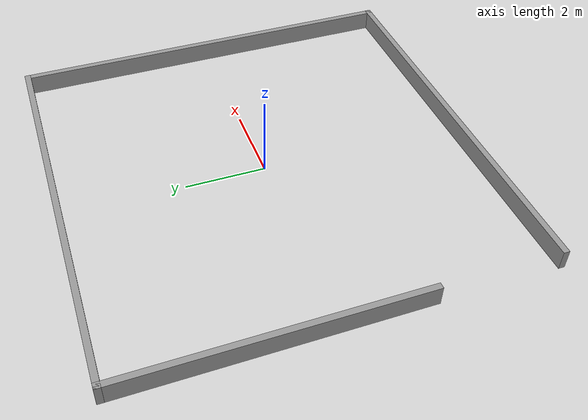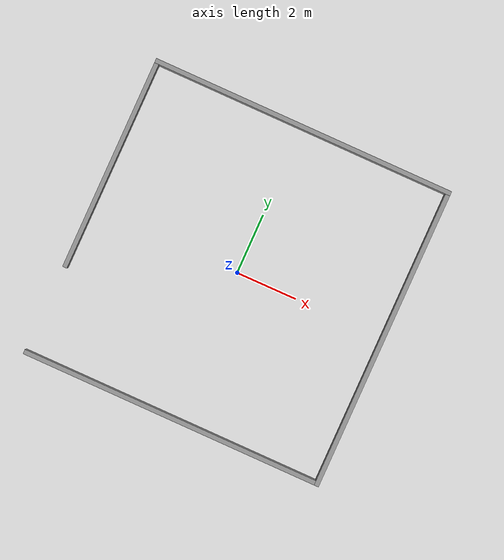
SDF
<?xml version='1.0'?>
<sdf version='1.6'>
  <model name='room'>
    <pose frame=''>0 0 0 0 -0 0</pose>
    <link name='Wall_1'>
      <collision name='Wall_1_Collision'>
        <geometry>
          <box>
            <size>10.15 0.15 0.5</size>
          </box>
        </geometry>
        <pose frame=''>0 0 0.25 0 -0 0</pose>
      </collision>
      <visual name='Wall_1_Visual'>
        <pose frame=''>0 0 0.25 0 -0 0</pose>
        <geometry>
          <box>
            <size>10.15 0.15 0.5</size>
          </box>
        </geometry>
        <material>
          <script>
            <uri>file://media/materials/scripts/gazebo.material</uri>
            <name>Gazebo/Grey</name>
          </script>
          <ambient>1 1 1 1</ambient>
        </material>
      </visual>
      <pose frame=''>0 5 0 0 -0 0</pose>
    </link>
    <link name='Wall_2'>
      <collision name='Wall_2_Collision'>
        <geometry>
          <box>
            <size>10.15 0.15 0.5</size>
          </box>
        </geometry>
        <pose frame=''>0 0 0.25 0 -0 0</pose>
      </collision>
      <visual name='Wall_2_Visual'>
        <pose frame=''>0 0 0.25 0 -0 0</pose>
        <geometry>
          <box>
            <size>10.15 0.15 0.5</size>
          </box>
        </geometry>
        <material>
          <script>
            <uri>file://media/materials/scripts/gazebo.material</uri>
            <name>Gazebo/Grey</name>
          </script>
          <ambient>1 1 1 1</ambient>
        </material>
      </visual>
      <pose frame=''>5 0 0 0 0 -1.5708</pose>
    </link>
    <link name='Wall_3'>
      <collision name='Wall_3_Collision'>
        <geometry>
          <box>
            <size>10.15 0.15 0.5</size>
          </box>
        </geometry>
        <pose frame=''>0 0 0.25 0 -0 0</pose>
      </collision>
      <visual name='Wall_3_Visual'>
        <pose frame=''>0 0 0.25 0 -0 0</pose>
        <geometry>
          <box>
            <size>10.15 0.15 0.5</size>
          </box>
        </geometry>
        <material>
          <script>
            <uri>file://media/materials/scripts/gazebo.material</uri>
            <name>Gazebo/Grey</name>
          </script>
          <ambient>1 1 1 1</ambient>
        </material>
      </visual>
      <pose frame=''>0 -5 0 0 -0 3.14159</pose>
    </link>
    <link name='Wall_7'>
      <collision name='Wall_7_Collision'>
        <geometry>
          <box>
            <size>7.15 0.15 0.5</size>
          </box>
        </geometry>
        <pose frame=''>0 0 0.25 0 -0 0</pose>
      </collision>
      <visual name='Wall_7_Visual'>
        <pose frame=''>0 0 0.25 0 -0 0</pose>
        <geometry>
          <box>
            <size>7.15 0.15 0.5</size>
          </box>
        </geometry>
        <material>
          <script>
            <uri>file://media/materials/scripts/gazebo.material</uri>
            <name>Gazebo/Grey</name>
          </script>
          <ambient>1 1 1 1</ambient>
        </material>
      </visual>
      <pose frame=''>-5 1.5 0 0 0 -1.5708</pose>
    </link>
    <static>1</static>
  </model>
</sdf>
